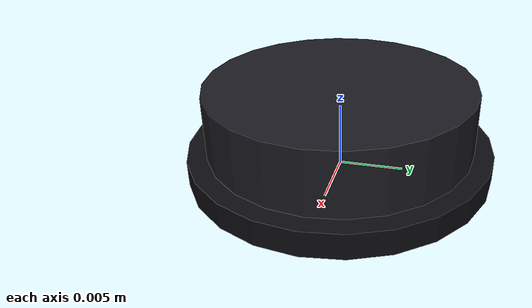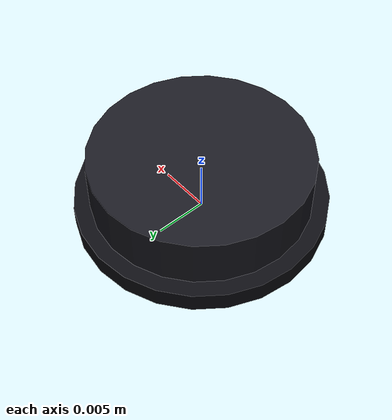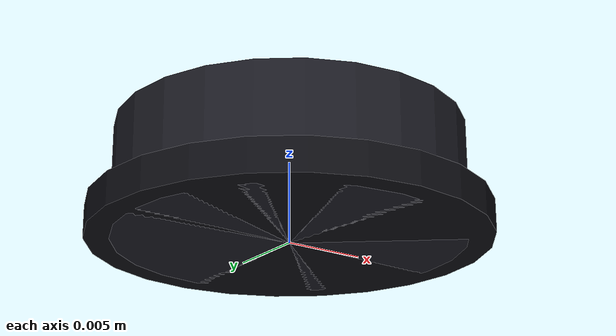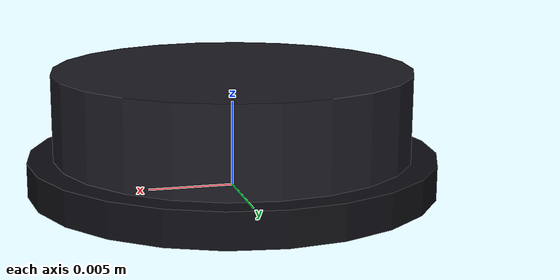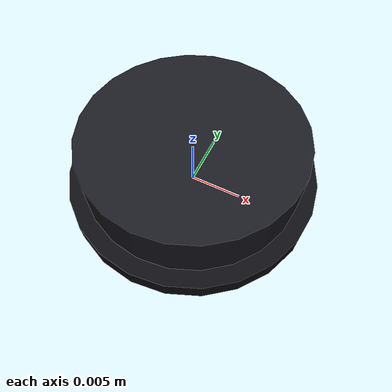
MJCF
<mujoco model="Knob_Quantity1_02">
  <asset>
    <material name="Knob_Quantity1_02_base" rgba="0.05 0.05 0.07 1" specular="0.7" shininess="0.8"/>
    <material name="Knob_Quantity1_02_button" rgba="0.10 0.10 0.13 1" specular="0.7" shininess="0.8"/>
  </asset>
  <worldbody>
    <body name="Knob_Quantity1_02">
      <geom name="Knob_Quantity1_02_base" type="cylinder"
            pos="0 0 0.001" size="0.012 0.001"
            material="Knob_Quantity1_02_base"/>
      <geom name="Knob_Quantity1_02_button" type="cylinder"
            pos="0 0 0.0035" size="0.0105 0.0035"
            material="Knob_Quantity1_02_button"/>
    </body>
  </worldbody>
</mujoco>
